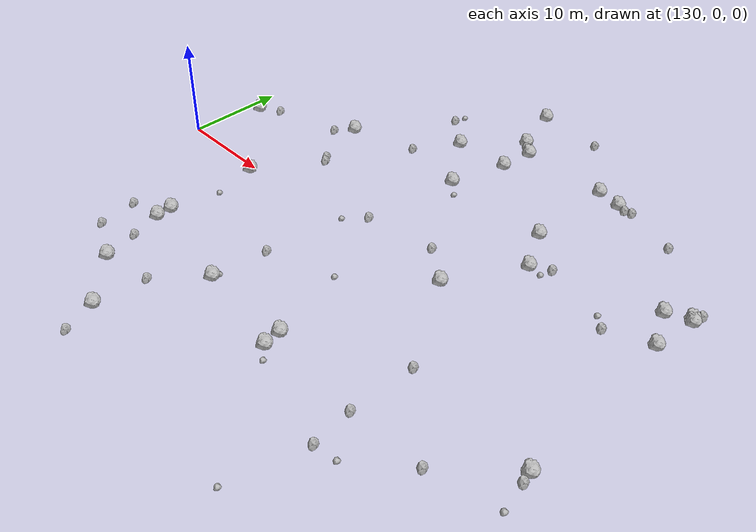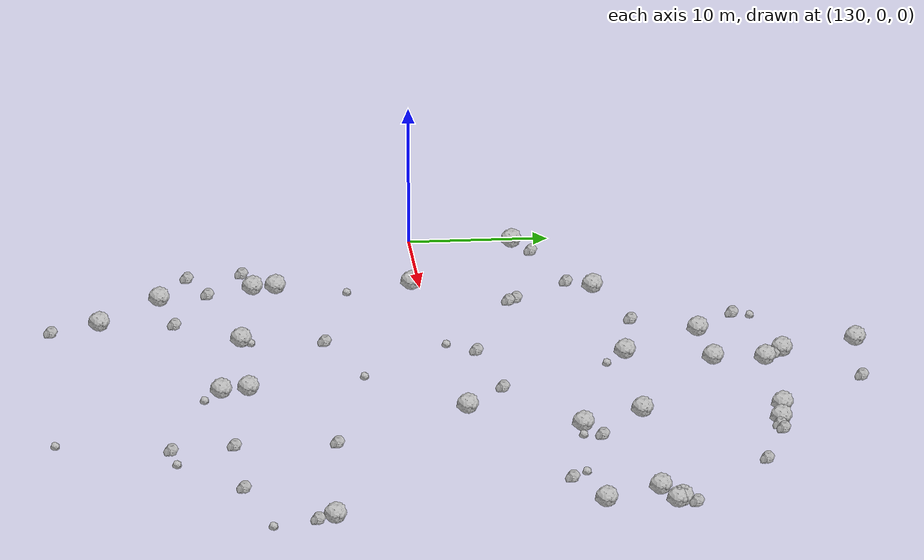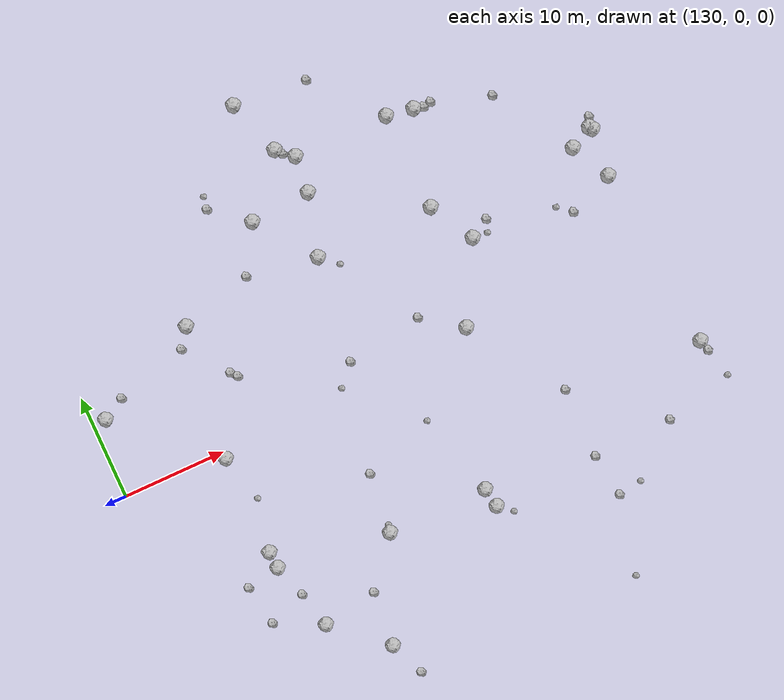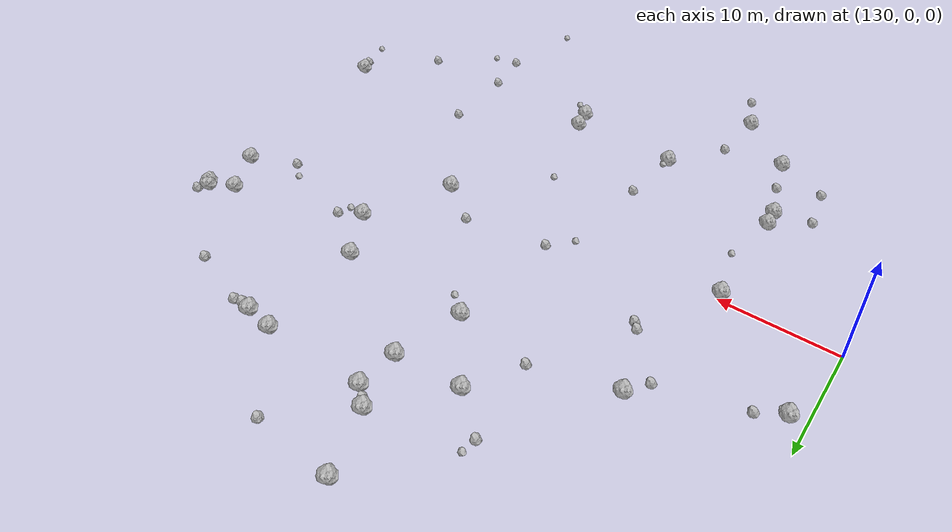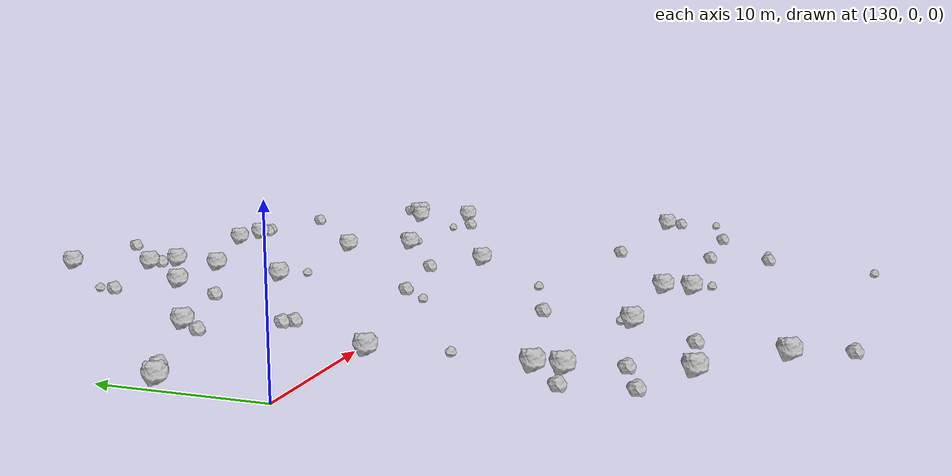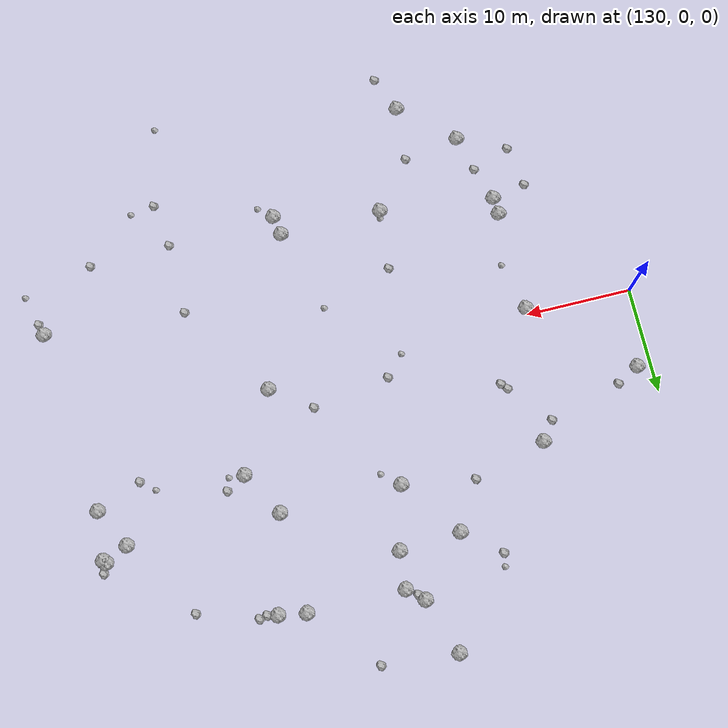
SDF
<sdf version="1.6">
 <world name="default">
  <include><uri>model://sun</uri></include>
  <model name="rock1_4_1">
   <include><uri>model://rock1</uri><pose>166.72598971280354 22.100232624053355 0.5 0 0 0</pose></include>
  </model>
  <model name="rock1_4_2">
   <include><uri>model://rock1</uri><pose>141.77124169441046 12.043301800062729 0.5 0 0 0</pose></include>
  </model>
  <model name="rock1_4_3">
   <include><uri>model://rock1</uri><pose>140.03025910833202 -0.614392752561912 0.5 0 0 0</pose></include>
  </model>
  <model name="rock1_4_4">
   <include><uri>model://rock1</uri><pose>181.24441548436752 12.233881191376902 0.5 0 0 0</pose></include>
  </model>
  <model name="rock1_4_5">
   <include><uri>model://rock1</uri><pose>157.5321567388225 22.177160457321925 0.5 0 0 0</pose></include>
  </model>
  <model name="rock1_4_6">
   <include><uri>model://rock1</uri><pose>142.0763452614823 -18.45655371675312 0.5 0 0 0</pose></include>
  </model>
  <model name="rock1_4_7">
   <include><uri>model://rock1</uri><pose>131.40185315938567 7.280583552372974 0.5 0 0 0</pose></include>
  </model>
  <model name="rock1_4_8">
   <include><uri>model://rock1</uri><pose>157.18668181539311 18.654967473271483 0.5 0 0 0</pose></include>
  </model>
  <model name="rock1_4_9">
   <include><uri>model://rock1</uri><pose>165.34628850075975 1.1775664537623278 0.5 0 0 0</pose></include>
  </model>
  <model name="rock1_4_10">
   <include><uri>model://rock1</uri><pose>155.55770685826533 12.799526454432282 0.5 0 0 0</pose></include>
  </model>
  <model name="rock1_4_11">
   <include><uri>model://rock1</uri><pose>169.3443722782062 8.493737569867449 0.5 0 0 0</pose></include>
  </model>
  <model name="rock1_4_12">
   <include><uri>model://rock1</uri><pose>146.92557172194157 -22.792382364105514 0.5 0 0 0</pose></include>
  </model>
  <model name="rock1_4_13">
   <include><uri>model://rock1</uri><pose>156.0063328489879 23.525483706924682 0.5 0 0 0</pose></include>
  </model>
  <model name="rock1_4_14">
   <include><uri>model://rock1</uri><pose>154.25045060483902 28.847692751102194 0.5 0 0 0</pose></include>
  </model>
  <model name="rock1_4_15">
   <include><uri>model://rock1</uri><pose>183.6152233354332 13.078326229310228 0.5 0 0 0</pose></include>
  </model>
  <model name="rock1_4_16">
   <include><uri>model://rock1</uri><pose>161.03475100746357 -15.03156253734415 0.5 0 0 0</pose></include>
  </model>
  <model name="rock1_4_17">
   <include><uri>model://rock1</uri><pose>169.31228313753616 21.662575726964178 0.5 0 0 0</pose></include>
  </model>
  <model name="rock1_4_18">
   <include><uri>model://rock1</uri><pose>140.20257777147506 -11.828452936828292 0.5 0 0 0</pose></include>
  </model>
  <model name="rock1_4_19">
   <include><uri>model://rock1</uri><pose>160.70743053690995 -13.186208300382528 0.5 0 0 0</pose></include>
  </model>
  <model name="rock1_4_20">
   <include><uri>model://rock1</uri><pose>183.4050253525417 13.351663780716237 0.5 0 0 0</pose></include>
  </model>
  <model name="rock1_4_21">
   <include><uri>model://rock1</uri><pose>140.09656130128172 -10.211037320786488 0.5 0 0 0</pose></include>
  </model>
  <model name="rock1_4_22">
   <include><uri>model://rock1</uri><pose>151.376022291377 18.31330398326606 0.5 0 0 0</pose></include>
  </model>
  <model name="rock1_4_23">
   <include><uri>model://rock1</uri><pose>166.97311614783277 12.689883983356964 0.5 0 0 0</pose></include>
  </model>
  <model name="rock1_4_24">
   <include><uri>model://rock1</uri><pose>184.57689787003522 -8.92693222793465 0.5 0 0 0</pose></include>
  </model>
  <model name="rock1_4_25">
   <include><uri>model://rock1</uri><pose>183.15507570093132 8.521717690588346 0.5 0 0 0</pose></include>
  </model>
  <model name="rock1_4_26">
   <include><uri>model://rock1</uri><pose>151.01750727709407 -13.182722396872514 0.5 0 0 0</pose></include>
  </model>
  <model name="rock2_4_0">
   <include><uri>model://rock2</uri><pose>171.28877701906634 -7.893162178383861 0.3 0 0 0</pose></include>
  </model>
  <model name="rock2_4_1">
   <include><uri>model://rock2</uri><pose>147.9638517132856 21.129306891822083 0.3 0 0 0</pose></include>
  </model>
  <model name="rock2_4_2">
   <include><uri>model://rock2</uri><pose>170.98742290869143 21.607579846367273 0.3 0 0 0</pose></include>
  </model>
  <model name="rock2_4_3">
   <include><uri>model://rock2</uri><pose>170.2370810217471 21.452917499517177 0.3 0 0 0</pose></include>
  </model>
  <model name="rock2_4_4">
   <include><uri>model://rock2</uri><pose>154.22686969879337 2.7492312336377296 0.3 0 0 0</pose></include>
  </model>
  <model name="rock2_4_5">
   <include><uri>model://rock2</uri><pose>171.2758988451909 -14.653589534137826 0.3 0 0 0</pose></include>
  </model>
  <model name="rock2_4_6">
   <include><uri>model://rock2</uri><pose>144.1586434137423 5.878610326466585 0.3 0 0 0</pose></include>
  </model>
  <model name="rock2_4_7">
   <include><uri>model://rock2</uri><pose>161.33174577705293 28.2529347934562 0.3 0 0 0</pose></include>
  </model>
  <model name="rock2_4_8">
   <include><uri>model://rock2</uri><pose>151.56155240959347 -7.47316722377948 0.3 0 0 0</pose></include>
  </model>
  <model name="rock2_4_9">
   <include><uri>model://rock2</uri><pose>148.7063233224724 13.954984254660438 0.3 0 0 0</pose></include>
  </model>
  <model name="rock2_4_10">
   <include><uri>model://rock2</uri><pose>148.2568674386074 -26.168458549334417 0.3 0 0 0</pose></include>
  </model>
  <model name="rock2_4_11">
   <include><uri>model://rock2</uri><pose>183.79730354203872 14.261899418878215 0.3 0 0 0</pose></include>
  </model>
  <model name="rock2_4_12">
   <include><uri>model://rock2</uri><pose>178.97446688685199 -14.42830742204156 0.3 0 0 0</pose></include>
  </model>
  <model name="rock2_4_13">
   <include><uri>model://rock2</uri><pose>136.93048613315995 -12.430481477318459 0.3 0 0 0</pose></include>
  </model>
  <model name="rock2_4_14">
   <include><uri>model://rock2</uri><pose>133.48322551223015 8.47921345268066 0.3 0 0 0</pose></include>
  </model>
  <model name="rock2_4_15">
   <include><uri>model://rock2</uri><pose>161.6138030245831 3.8803966253075117 0.3 0 0 0</pose></include>
  </model>
  <model name="rock2_4_16">
   <include><uri>model://rock2</uri><pose>178.82588136493155 6.801205795037845 0.3 0 0 0</pose></include>
  </model>
  <model name="rock2_4_17">
   <include><uri>model://rock2</uri><pose>156.50563434038716 22.931971255224155 0.3 0 0 0</pose></include>
  </model>
  <model name="rock2_4_18">
   <include><uri>model://rock2</uri><pose>147.31811210893858 -17.61185586854486 0.3 0 0 0</pose></include>
  </model>
  <model name="rock2_4_19">
   <include><uri>model://rock2</uri><pose>184.8676977850934 -10.034585127140748 0.3 0 0 0</pose></include>
  </model>
  <model name="rock2_4_20">
   <include><uri>model://rock2</uri><pose>143.66980145451913 6.447272705713431 0.3 0 0 0</pose></include>
  </model>
  <model name="rock2_4_21">
   <include><uri>model://rock2</uri><pose>171.8517060036907 -18.824249472717987 0.3 0 0 0</pose></include>
  </model>
  <model name="rock2_4_22">
   <include><uri>model://rock2</uri><pose>176.47543267297755 19.773597633247846 0.3 0 0 0</pose></include>
  </model>
  <model name="rock2_4_23">
   <include><uri>model://rock2</uri><pose>137.5683735786285 -16.332252548494026 0.3 0 0 0</pose></include>
  </model>
  <model name="rock2_4_24">
   <include><uri>model://rock2</uri><pose>171.18456411445555 9.57959023530693 0.3 0 0 0</pose></include>
  </model>
  <model name="rock2_4_25">
   <include><uri>model://rock2</uri><pose>141.1907693514733 -15.04163907910791 0.3 0 0 0</pose></include>
  </model>
  <model name="rock2_4_26">
   <include><uri>model://rock2</uri><pose>140.4279471872461 10.305628253959505 0.3 0 0 0</pose></include>
  </model>
  <model name="rock3_4_0">
   <include><uri>model://rock3</uri><pose>158.40667522732284 -5.223225731017109 0.2 0 0 0</pose></include>
  </model>
  <model name="rock3_4_1">
   <include><uri>model://rock3</uri><pose>152.44181137280614 0.8143162013738561 0.2 0 0 0</pose></include>
  </model>
  <model name="rock3_4_2">
   <include><uri>model://rock3</uri><pose>170.0844417856387 -26.34877115460846 0.2 0 0 0</pose></include>
  </model>
  <model name="rock3_4_3">
   <include><uri>model://rock3</uri><pose>174.12904272114616 -18.539784940240658 0.2 0 0 0</pose></include>
  </model>
  <model name="rock3_4_4">
   <include><uri>model://rock3</uri><pose>148.16580515529242 22.334986116029498 0.2 0 0 0</pose></include>
  </model>
  <model name="rock3_4_5">
   <include><uri>model://rock3</uri><pose>162.26789007378466 -16.215721268915146 0.2 0 0 0</pose></include>
  </model>
  <model name="rock3_4_6">
   <include><uri>model://rock3</uri><pose>185.54770395139587 -12.918953095001704 0.2 0 0 0</pose></include>
  </model>
  <model name="rock3_4_7">
   <include><uri>model://rock3</uri><pose>157.10024275774447 11.377193072938418 0.2 0 0 0</pose></include>
  </model>
  <model name="rock3_4_8">
   <include><uri>model://rock3</uri><pose>177.5291030570657 7.855429054813513 0.2 0 0 0</pose></include>
  </model>
  <model name="rock3_4_9">
   <include><uri>model://rock3</uri><pose>151.12281981743183 -12.520111523202047 0.2 0 0 0</pose></include>
  </model>
  <model name="rock3_4_10">
   <include><uri>model://rock3</uri><pose>141.0945998978645 -5.247081109919375 0.2 0 0 0</pose></include>
  </model>
  <model name="rock3_4_11">
   <include><uri>model://rock3</uri><pose>170.75510821599826 8.356706644065198 0.2 0 0 0</pose></include>
  </model>
 </world>
</sdf>
